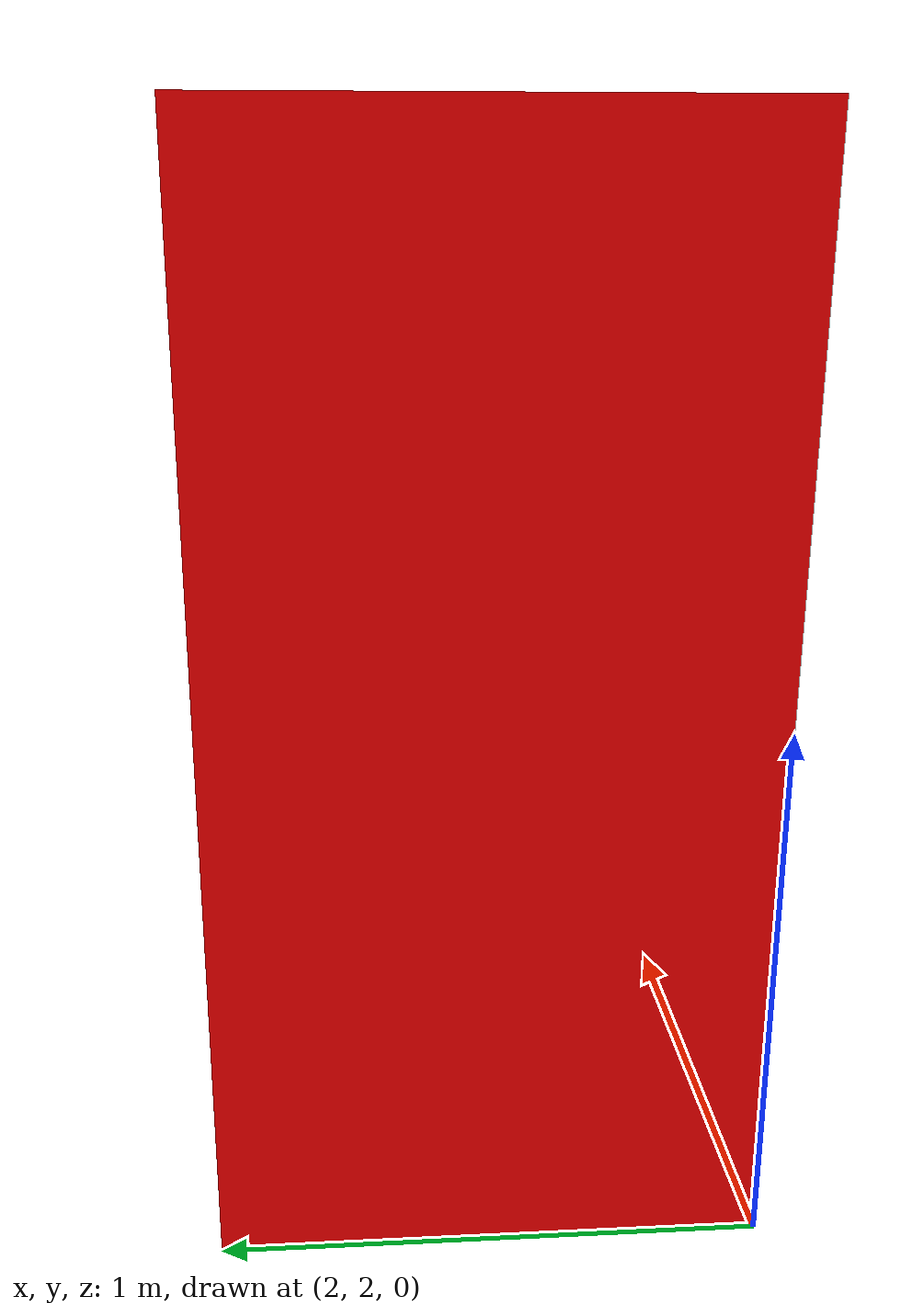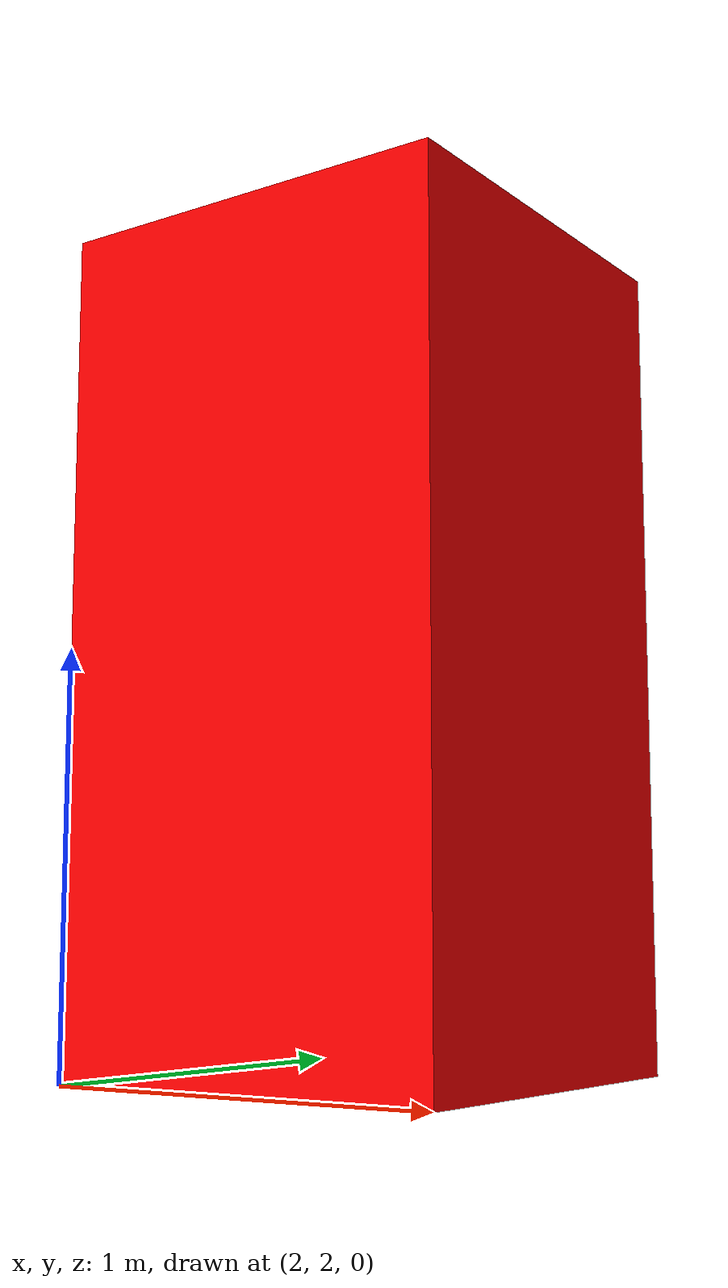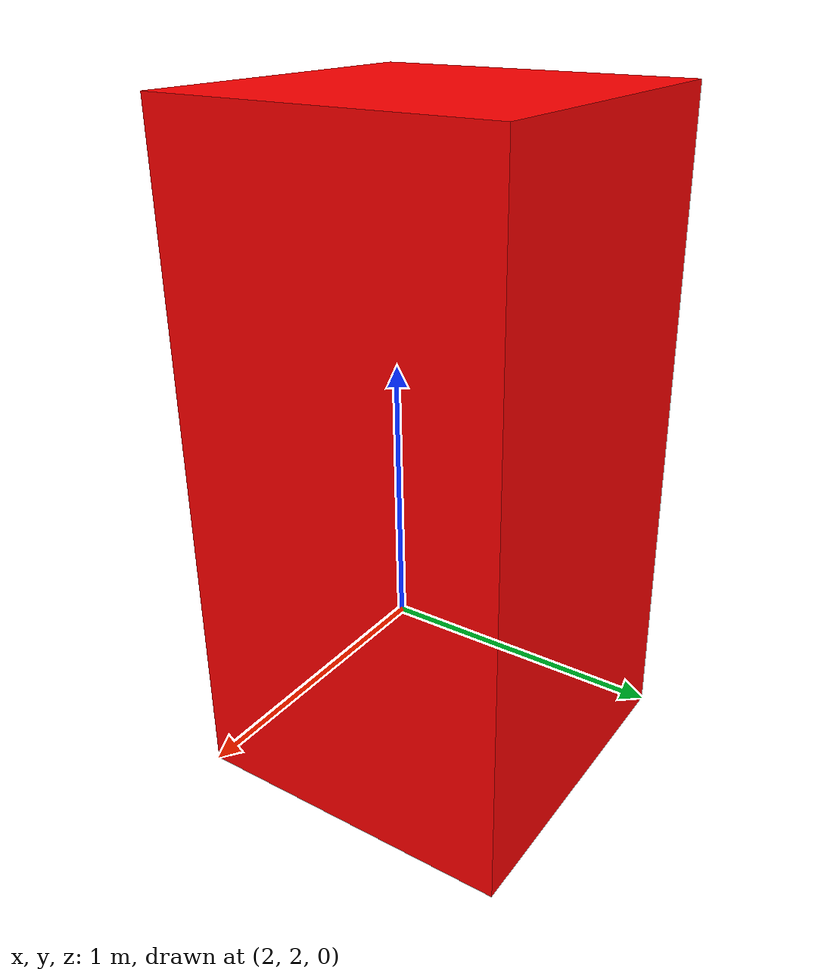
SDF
<?xml version="1.0"?>

<sdf version="1.9">

  <model name="critical_box">

    <static>true</static>

    <pose>2.5 2.5 1 0 0 0</pose>

    <link name="body">

      <collision name="collision">

        <geometry>
          <box>
            <size>1 1 2</size>
          </box>
        </geometry>

      </collision>

      <visual name="visual">

        <geometry>
          <box>
            <size>1 1 2</size>
          </box>
        </geometry>

        <material>
          <ambient>1 0 0 1</ambient>
          <diffuse>1 0 0 1</diffuse>
        </material>

      </visual>

    </link>

  </model>

</sdf>
